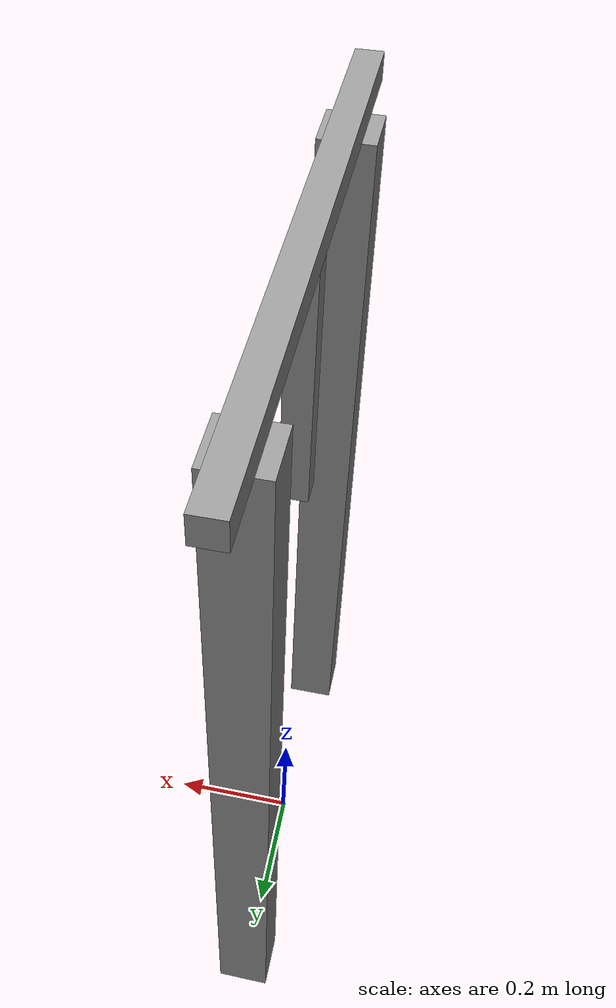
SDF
<?xml version="1.0"?>
<sdf version="1.7">
  <model name="camera_stand_model">
    <!--
    Axes:
      +X - Pointing towards front (slope)
      +Y - Pointing to left side
      +Z - Up
    Origin:
      (0, 0, 0) at the center bottom of the bin
    -->
    <link name="base">
      <inertial>
        <mass>18.70</mass>
        <inertia>
          <ixx>0.79</ixx>
          <ixy>0</ixy>
          <ixz>0</ixz>
          <iyy>0.53</iyy>
          <iyz>0</iyz>
          <izz>1.2</izz>
        </inertia>
      </inertial>
      <visual name="left_rod">
        <pose>0 -0.31 0.61 0 0 0</pose>
        <geometry>
          <box>
            <size>0.08 0.08 1.22</size>
          </box>
        </geometry>
        <material>
          <diffuse>0.6 0.6 0.6 1.0</diffuse>
        </material>
      </visual>

      <visual name="right_rod">
        <pose>0 0.31 0.61 0 0 0</pose>
        <geometry>
          <box>
            <size>0.08 0.08 1.22</size>
          </box>
        </geometry>
        <material>
          <diffuse>0.6 0.6 0.6 1.0</diffuse>
        </material>
      </visual>

      <visual name="top_rod">
        <pose>0 0 1.24 0 0 0</pose>
        <geometry>
          <box>
            <size>0.04 0.89 0.04</size>
          </box>
        </geometry>
        <material>
          <diffuse>0.6 0.6 0.6 1.0</diffuse>
        </material>
      </visual>
      <visual name="middle_rod">
        <pose>0 0 1.04 0 0 0</pose>
        <geometry>
          <box>
            <size>0.04 0.04 0.36</size>
          </box>
        </geometry>
        <material>
          <diffuse>0.6 0.6 0.6 1.0</diffuse>
        </material>
      </visual>
    </link>
  </model>
</sdf>
